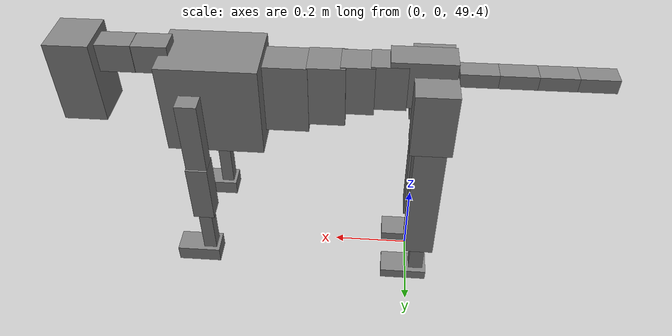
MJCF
<mujoco model="dog">

    <default>
        <joint armature="0.02" stiffness="1" damping="0.2" limited="true"/>
        <geom condim="3" friction="1 0.05 0.05" margin="0.01"/>
        <motor ctrllimited="true" ctrlrange="-1.0 1.0" forcelimited="true" gear="50"/>
    </default>

    <compiler inertiafromgeom="true" angle="radian"/>

    <option timestep="0.016" iterations="50" tolerance="1e-10" solver="Newton" jacobian="dense" cone="pyramidal"/>

    <size nconmax="20000" njmax="60000" nstack="5000000"/>
    <visual>
        <map force="0.1" zfar="30"/>
        <rgba haze="0.15 0.25 0.35 1"/>
        <quality shadowsize="2048"/>
        <global offwidth="800" offheight="800"/>
    </visual>

    <asset>
        <texture type="skybox" builtin="gradient" rgb1="0.3 0.5 0.7" rgb2="0 0 0" width="512" height="512"/>
        <texture name="texplane" type="2d" builtin="checker" rgb1=".2 .3 .4" rgb2=".1 0.15 0.2" width="512" height="512"
                 mark="cross" markrgb=".8 .8 .8"/>
        <texture name="texgeom" type="cube" builtin="flat" mark="cross" width="127" height="1278" rgb1="0.8 0.6 0.4"
                 rgb2="0.8 0.6 0.4" markrgb="1 1 1" random="0.01"/>

        <material name="matplane" reflectance="0.3" texture="texplane" texrepeat="1 1" texuniform="true"/>
        <material name="matgeom" texture="texgeom" texuniform="true" rgba="0.8 0.6 .4 1"/>
    </asset>

    <worldbody>
        <geom name="floor" pos="0 0 0" size="0 0 .25" type="plane" material="matplane" condim="3"/>

        <light directional="false" diffuse=".2 .2 .2" specular="0 0 0" pos="0 0 5" dir="0 0 -1" castshadow="false"/>
        <light mode="targetbodycom" target="torso" directional="false" diffuse=".8 .8 .8" specular="0.3 0.3 0.3"
               pos="0 0 4.0" dir="0 0 -1"/>

        <body name="root" pos="0 0 50">
            <freejoint name="root_1"/>
            <geom type="box" pos="0 0 -0.02" size="0.0774  0.0358  0.063" density="2030"/>

            <body name="spine1" pos="0.054 0 0">
                <joint name="spine1_y" axis="0 1 0" range="0 0.7" limited="true"/>
                <geom type="box" pos="0.02375 0 -0.03" size="0.04375  0.0375  0.05985" density="2030"/>

                <body name="spine2" pos="0.0612 0 0">
                    <joint name="spine2_y" axis="0 1 0" range="-0.15 0.15" limited="true"/>
                    <geom type="box" pos="0.03555  0  -0.04" size="0.04055  0.039  0.06615" density="2030"/>

                    <body name="spine3" pos="0.0730 0 0">
                        <joint name="spine3_y" axis="0 1 0" range="-0.15 0.15" limited="true"/>
                        <geom type="box" pos="0.03555  0  -0.057" size="0.04555  0.0445  0.081" density="2030"/>

                        <body name="spine4" pos="0.0780 0 0">
                            <joint name="spine4_y" axis="0 1 0" range="-0.15 0.15" limited="true"/>
                            <geom type="box" pos="0.05265  0  -0.07" size="0.05265  0.045  0.09135" density="2030"/>

                            <body name="torso" pos="0.1082 0 0">
                                <joint name="torso_y" axis="0 1 0" range="-0.15 0.15" limited="true"/>
                                <geom type="box" pos="0.11925  0  -0.085" size="0.11925  0.085  0.11745"
                                      density="2030"/>

                                <body name="neck1" pos="0.2160  0   0.0180">
                                    <joint name="neck1_y" axis="0 1 0" range="-1.2  -1" limited="true"/>
                                    <geom type="box" pos="0.0423  0  0" size="0.0423  0.03  0.036" density="2325"/>

                                    <body name="neck2" pos="0.0853  0  0">
                                        <joint name="neck2_y" axis="0 1 0" range="0.1  0" limited="true"/>
                                        <geom type="box" pos="0.0423  0  0" size="0.0423  0.03  0.036" density="2325"/>

                                        <body name="head" pos="0.0853  0  0">
                                            <joint name="head_y" axis="0 1 0" range="-0.3  -0.2" limited="true"/>
                                            <geom type="box" pos="0.0531  0  -0.055" size="0.0531  0.06  0.1044"
                                                  density="4030"/>

                                        </body>
                                    </body>
                                </body>

                                <body name="front_shoulder" pos="0.156  0   -0.0480">
                                    <joint name="front_shoulder_y" axis="0 1 0" range="-1 1.5" limited="true"/>
                                    <geom type="box" pos="0 0.13 -0.0811" size="0.0254  0.0217  0.1078" density="1158"/>
                                    <geom type="box" pos="0 -0.13 -0.0811" size="0.0254  0.0217  0.1078"
                                          density="1158"/>

                                    <body name="front_elbow" pos="0  0  -0.1623">
                                        <joint name="front_elbow_y" axis="0 1 0" range="-2 0" limited="true"/>
                                        <geom type="box" pos="0 0.13 -0.0798" size="0.0265  0.0270  0.0798"
                                              density="1081"/>
                                        <geom type="box" pos="0 -0.13 -0.0798" size="0.0265  0.0270  0.0798"
                                              density="1081"/>

                                        <body name="front_wrist" pos="0  0  -0.1595">
                                            <joint name="front_wrist_y" axis="0 1 0" range="-0.2 0" limited="true"/>
                                            <geom type="box" pos="0 0.13 -0.0696" size="0.0167  0.0186  0.0828"
                                                  density="1664"/>
                                            <geom type="box" pos="0 -0.13 -0.0696" size="0.0167  0.0186  0.0828"
                                                  density="1664"/>

                                            <body name="front_finger_end" pos="0  0  -0.1393">
                                                <joint name="front_finger_y" axis="0 1 0" range="-0.4 1"
                                                       limited="true"/>
                                                <geom type="box" pos="0.0303  0.13  -0.0059"
                                                      size="0.0555  0.0303  0.0209" density="1515"/>
                                                <geom type="box" pos="0.0303  -0.13  -0.0059"
                                                      size="0.0555  0.0303  0.0209" density="1515"/>

                                            </body>

                                        </body>
                                    </body>
                                </body>

                            </body>
                        </body>
                    </body>
                </body>
            </body>

            <body name="back_hip" pos="-0.03 0 -0.018">
                <joint name="back_hip_y" axis="0 1 0" range="-1.5 0.3" limited="true"/>
                <geom type="box" pos="0 0.07 -0.0632" size="0.0510  0.0400  0.0860" density="1154"/>
                <geom type="box" pos="0 -0.07 -0.0632" size="0.0510  0.0400  0.0860" density="1154"/>

                <body name="back_knee" pos="0  0  -0.1265">
                    <joint name="back_knee_y" axis="0 1 0" range="0 2.8" limited="true"/>
                    <geom type="box" pos="0 0.07 -0.1781" size="0.0387  0.0382  0.1937" density="1227"/>
                    <geom type="box" pos="0 -0.07 -0.1781" size="0.0387  0.0382  0.1937" density="1227"/>

                    <body name="back_ankle" pos="0  0  -0.3562">
                        <joint name="back_ankle_y" axis="0 1 0" range="-2.2 0" limited="true"/>
                        <geom type="box" pos="0 0.07 -0.0607" size="0.0196  0.0196  0.0719" density="1284"/>
                        <geom type="box" pos="0 -0.07 -0.0607" size="0.0196  0.0196  0.0719" density="1284"/>

                        <body name="back_toe_end" pos="0  0  -0.1214">
                            <joint name="back_toe_y" axis="0 1 0" range="-0.4 1" limited="true"/>
                            <geom type="box" pos="0.0343  0.07  0.0003" size="0.0629  0.0343  0.0147" density="1515"/>
                            <geom type="box" pos="0.0343  -0.07  0.0003" size="0.0629  0.0343  0.0147" density="1515"/>

                        </body>
                    </body>
                </body>
            </body>

            <body name="tail1" pos="-0.074 0 -0.006">
                <joint name="tail1_y" axis="0 1 0" range="-0.2 0.2" limited="true"/>
                <geom type="box" pos="-0.0536  0  0" size="0.045  0.025  0.0175" density="1587"/>

                <body name="tail2" pos="-0.09 0 0">
                    <joint name="tail2_y" axis="0 1 0" range="-0.2 0.2" limited="true"/>
                    <geom type="box" pos="-0.0536  0  0" size="0.045  0.025  0.0175" density="1587"/>

                    <body name="tail3" pos="-0.09 0 0">
                        <joint name="tail3_y" axis="0 1 0" range="-0.2 0.2" limited="true"/>
                        <geom type="box" pos="-0.0536  0  0" size="0.045  0.025  0.0175" density="1587"/>

                        <body name="tail4" pos="-0.09 0 0">
                            <joint name="tail4_y" axis="0 1 0" range="-0.2 0.2" limited="true"/>
                            <geom type="box" pos="-0.0536  0  0" size="0.045  0.025  0.0175" density="1587"/>

                        </body>
                    </body>
                </body>
            </body>
        </body>
    </worldbody>

    <actuator>
        <motor joint="spine1_y" forcerange="-150 150     "/>
        <motor joint="spine2_y" forcerange="-150 150     "/>
        <motor joint="spine3_y" forcerange="-150 150     "/>
        <motor joint="spine4_y" forcerange="-150 150     "/>
        <motor joint="torso_y" forcerange="-150 150     "/>
        <motor joint="neck1_y" forcerange="-100 100       "/>
        <motor joint="neck2_y" forcerange="-100 100       "/>
        <motor joint="head_y" forcerange="-150 150       "/>
        <motor joint="front_shoulder_y" forcerange="-135.98 108.99"/>
        <motor joint="front_elbow_y" forcerange="-130.69 166.00"/>
        <motor joint="front_wrist_y" forcerange="-92.84 55.90"/>
        <motor joint="front_finger_y" forcerange="-27.16 94.35"/>
        <motor joint="back_hip_y" forcerange="-397.45 336.20"/>
        <motor joint="back_knee_y" forcerange="-398.55 356.40"/>
        <motor joint="back_angle_y" forcerange="-98.14 114.85"/>
        <motor joint="back_toe_y" forcerange="-70.83 123.49"/>
        <motor joint="tail1_y" forcerange="-50 50     "/>
        <motor joint="tail2_y" forcerange="-50 50     "/>
        <motor joint="tail3_y" forcerange="-50 50     "/>
        <motor joint="tail4_y" forcerange="-50 50     "/>
    </actuator>
</mujoco>
